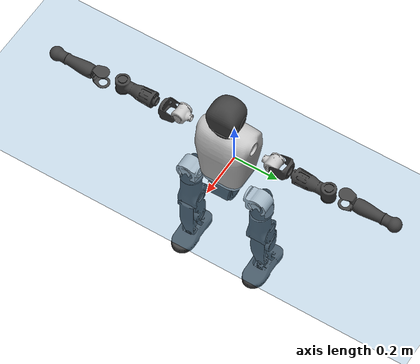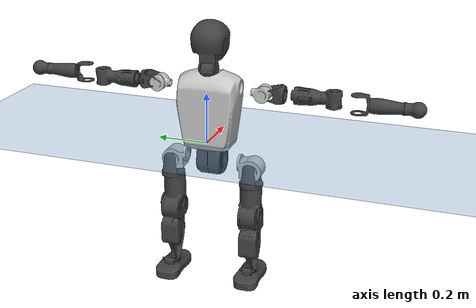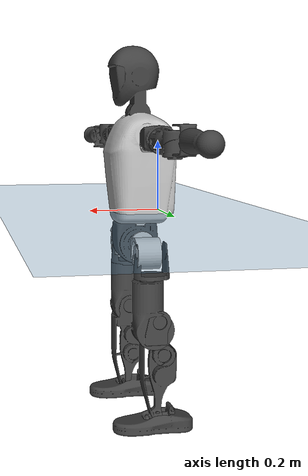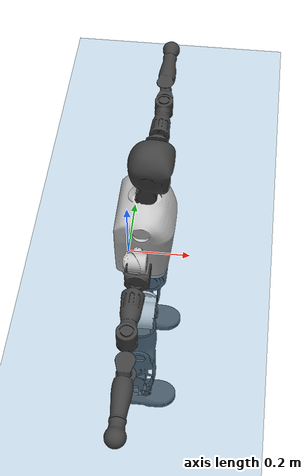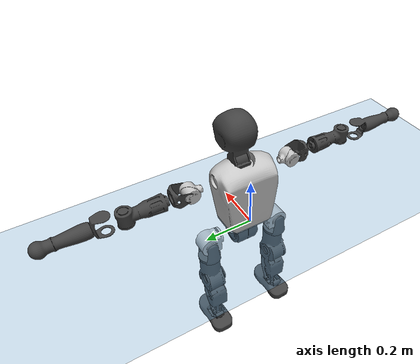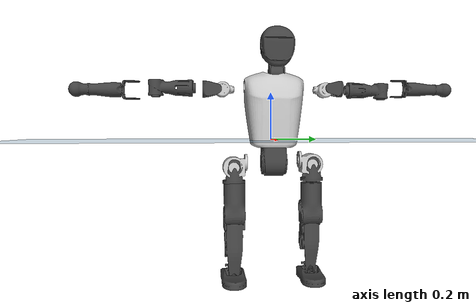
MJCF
<mujoco model="T1">
  <compiler angle="radian" assetdir="assets" balanceinertia="true" inertiafromgeom="false"/>

  <option timestep="0.005" density="1.2" viscosity="2e-05"/>

  <size nkey="1"/>

  <visual>
    <quality shadowsize="8192"/>
    <map shadowclip="0.5"/>
  </visual>

  <default>
    <default class="/">
      <joint armature="0.01" damping="0.01" frictionloss="0.1"/>
      <geom contype="0" conaffinity="0" group="1" solref="-1000 -80"/>
      <site size="0.01 0.005 0.005" group="5"/>
      <general forcelimited="true" biastype="affine" gainprm="25" biasprm="0 -25 -0.6"/>
      <default class="t1">
        <geom rgba="0.25 0.25 0.25 1"/>
        <default class="visual">
          <geom type="mesh" group="2"/>
        </default>
        <default class="collision">
          <geom group="3"/>
        </default>
        <default class="foot">
          <geom size="0.1115 0.05 0.015" type="box" condim="6" group="4" priority="1" solimp="0.015 1 0.015"/>
        </default>
        <default class="reward_collision_sphere">
          <geom group="5" rgba="1 0 0 1"/>
        </default>
      </default>
    </default>
  </default>

  <asset>
    <texture type="skybox" colorspace="auto" name="//unnamed_texture_0" builtin="gradient" rgb1="0.95 0.95 0.95" rgb2="0.95 0.95 0.95" width="100" height="600"/>
    <texture type="2d" colorspace="auto" name="texplane" builtin="checker" rgb1="0.345 0.575 0.748" rgb2="0.345 0.575 0.748" markrgb="1 1 1" width="512" height="512"/>
    <material name="MatPlane" class="/" texture="texplane" texuniform="true" texrepeat="2 2" specular="0.9"/>
    <mesh name="Trunk" class="/" file="Trunk.stl"/>
    <mesh name="H1" class="/" file="H1.stl"/>
    <mesh name="H2" class="/" file="H2.stl"/>
    <mesh name="AL1" class="/" file="AL1.stl"/>
    <mesh name="AL2" class="/" file="AL2.stl"/>
    <mesh name="AL3" class="/" file="AL3.stl"/>
    <mesh name="left_hand_link" class="/" file="left_hand_link.stl"/>
    <mesh name="AR1" class="/" file="AR1.stl"/>
    <mesh name="AR2" class="/" file="AR2.stl"/>
    <mesh name="AR3" class="/" file="AR3.stl"/>
    <mesh name="right_hand_link" class="/" file="right_hand_link.stl"/>
    <mesh name="Waist" class="/" file="Waist.stl"/>
    <mesh name="Hip_Pitch_Left" class="/" file="Hip_Pitch_Left.stl"/>
    <mesh name="Hip_Roll_Left" class="/" file="Hip_Roll_Left.stl"/>
    <mesh name="Hip_Yaw_Left" class="/" file="Hip_Yaw_Left.stl"/>
    <mesh name="Shank_Left" class="/" file="Shank_Left.stl"/>
    <mesh name="Ankle_Cross_Left" class="/" file="Ankle_Cross_Left.stl"/>
    <mesh name="left_foot_link" class="/" file="left_foot_link.stl"/>
    <mesh name="Hip_Pitch_Right" class="/" file="Hip_Pitch_Right.stl"/>
    <mesh name="Hip_Roll_Right" class="/" file="Hip_Roll_Right.stl"/>
    <mesh name="Hip_Yaw_Right" class="/" file="Hip_Yaw_Right.stl"/>
    <mesh name="Shank_Right" class="/" file="Shank_Right.stl"/>
    <mesh name="Ankle_Cross_Right" class="/" file="Ankle_Cross_Right.stl"/>
    <mesh name="right_foot_link" class="/" file="right_foot_link.stl"/>
  </asset>

  <worldbody>
    <geom name="floor" class="/" size="100 100 0.125" type="plane" group="0" material="MatPlane"/>
    <light name="toplight_shadow" class="/" pos="0 0 5" dir="0.0990148 0.0990148 -0.990148" type="directional" ambient="0.04 0.04 0.04" diffuse="0.55 0.55 0.55" specular="0.12 0.12 0.12"/>
    <light name="toplight_fill" class="/" pos="0 0 5" dir="0.0990148 0.0990148 -0.990148" type="directional" castshadow="false" ambient="0.04 0.04 0.04" diffuse="0.3 0.3 0.3" specular="0.08 0.08 0.08"/>
    <body name="trunk" childclass="t1" pos="-0.000155689 0.0031489 0.00268772" quat="1 -0.000485433 0.000574927 0.000264278">
      <inertial pos="0.0478211 -0.0122396 0.0860637" quat="0.999578 0.0271545 0.0102953 -3.03979e-05" mass="19.3081" diaginertia="0.0905927 0.74878 0.0382061"/>
      <joint name="//unnamed_joint_0" type="free" armature="0" damping="0" frictionloss="0"/>
      <geom name="//unnamed_geom_1" class="visual" rgba="0.76 0.76 0.76 1" mesh="Trunk"/>
      <geom name="//unnamed_geom_2" class="collision" size="0.0866025 0.11547 0.173205" pos="0.0592156 0 0.109654" type="box"/>
      <geom name="//unnamed_geom_3" class="reward_collision_sphere" size="0.13279" pos="0.0592156 0 0.0913782"/>
      <geom name="//unnamed_geom_4" class="reward_collision_sphere" size="0.0173205" pos="0.0592156 0.132888 0"/>
      <geom name="//unnamed_geom_5" class="reward_collision_sphere" size="0.0173205" pos="0.0592156 -0.132888 0"/>
      <geom name="//unnamed_geom_6" class="reward_collision_sphere" size="0.0173205" pos="0.0592156 0.167283 0.164481"/>
      <geom name="//unnamed_geom_7" class="reward_collision_sphere" size="0.0173205" pos="0.0592156 -0.167283 0.164481"/>
      <site name="imu" pos="0.0278787 0.0225199 -0.00843197" size="0.011547"/>
      <camera name="track" pos="0 -3.12678 0" quat="0.707107 0.707107 0 0" mode="trackcom"/>
      <camera name="ego_camera" pos="0.120405 0 0.383788" quat="-0.5 -0.5 0.5 0.5"/>
      <body name="H1" pos="0.0642663 0.00918141 0.212079" quat="1 0.000118936 7.52917e-05 -9.59136e-05">
        <inertial pos="-0.00210746 -0.0145092 0.053086" quat="0.776147 -0.0536349 0.017902 0.628011" mass="0.73899" diaginertia="0.000237536 0.00226678 9.25172e-05"/>
        <joint name="AAHead_yaw" pos="0 0 0" axis="0.0168324 0.00592397 0.999841" range="-1.57224 1.77643" armature="0.0103143" damping="0" frictionloss="0.189077"/>
        <geom name="//unnamed_geom_8" class="visual" mesh="H1"/>
        <body name="H2" pos="-0.00181913 0.00287602 0.065421" quat="1 -0.000484417 -2.30539e-05 0.000497516">
          <inertial pos="0.00980225 0.0124451 0.0931267" quat="0.979509 0.153078 -0.0967613 -0.0881289" mass="0.997063" diaginertia="0.00190653 0.0183625 0.00101005"/>
          <joint name="Head_pitch" pos="0 0 0" axis="-0.00614653 -0.999977 -0.00295014" range="-1.25004 0.3316" armature="0.0107889" damping="0" frictionloss="0.153275"/>
          <geom name="//unnamed_geom_9" class="visual" mesh="H2"/>
          <geom name="//unnamed_geom_10" class="collision" size="0.0923759" pos="0.00986927 0 0.100516"/>
          <geom name="//unnamed_geom_11" class="reward_collision_sphere" size="0.103923" pos="0.0197385 0 0.0913782"/>
        </body>
      </body>
      <body name="AL1" pos="0.0638595 0.170135 0.205375" quat="0.999986 -0.0032779 0.00382749 -0.00188273">
        <inertial pos="-0.000785748 0.0745497 0.00348899" quat="0.499179 0.503136 -0.538884 0.455278" mass="0.81341" diaginertia="0.00125114 0.0106532 0.000191776"/>
        <joint name="Left_Shoulder_Pitch" pos="0 0 0" axis="-0.0023622 0.999991 0.00339753" stiffness="0.00104366" range="-3.32439 1.0379" armature="0.0118524" damping="0.0158924" frictionloss="0.11538"/>
        <geom name="//unnamed_geom_12" class="visual" rgba="0.76 0.76 0.76 1" mesh="AL1"/>
        <body name="AL2" pos="-3.49246e-05 0.0646564 0.00696681" quat="0.999994 -0.00351943 -4.66876e-05 0.000345283">
          <inertial pos="-0.00667766 0.047332 -0.00540165" quat="0.453686 0.559212 -0.489736 0.491539" mass="0.236216" diaginertia="0.000387924 0.00326987 9.93082e-05"/>
          <joint name="Left_Shoulder_Roll" pos="0 0 0" axis="-1 0.000114852 -0.000193683" range="-1.58494 1.72929" armature="0.0112368" damping="0" frictionloss="0.121106"/>
          <geom name="//unnamed_geom_13" class="visual" mesh="AL2"/>
          <body name="AL3" pos="0.00174158 0.0820893 -0.00486392" quat="1 -0.000246491 -8.76014e-05 -0.000365048">
            <inertial pos="0.0110373 0.134696 0.00577523" quat="0.720899 0.692555 -0.0160705 -0.0203743" mass="1.26127" diaginertia="0.0109771 0.105437 0.000343002"/>
            <joint name="Left_Elbow_Pitch" pos="0 0 0" axis="-0.0225897 -0.99974 -0.00299323" range="-2.2824 2.05494" armature="0.0112017" damping="0" frictionloss="0.106202"/>
            <geom name="//unnamed_geom_14" class="visual" mesh="AL3"/>
            <geom name="//unnamed_geom_15" class="collision" size="0.034641 0.0866025" pos="0 0.0781694 0" quat="0.707105 0.707108 0 0" type="cylinder"/>
            <geom name="//unnamed_geom_16" class="reward_collision_sphere" size="0.0415692"/>
            <body name="left_hand_link" pos="-0.00425351 0.219352 0.0115939" quat="1 -3.39115e-05 -9.41693e-05 9.24778e-05">
              <inertial pos="0.000448335 0.170862 0.00171743" quat="0.704132 0.710014 0.00706619 0.00529665" mass="0.499029" diaginertia="0.0084286 0.0740618 0.000135994"/>
              <joint name="Left_Elbow_Yaw" pos="0 0 0" axis="0.00762197 -0.0127572 0.99989" range="-2.22853 -0.0138074" armature="0.0103931" damping="0.0696289" frictionloss="0.0672784"/>
              <geom name="//unnamed_geom_17" class="visual" mesh="left_hand_link"/>
              <geom name="//unnamed_geom_18" class="collision" size="0.034641 0.101036" pos="0 0.203241 0" quat="0.707105 0.707108 0 0" type="cylinder"/>
              <geom name="//unnamed_geom_19" class="reward_collision_sphere" size="0.057735"/>
              <geom name="//unnamed_geom_20" class="reward_collision_sphere" size="0.0404145" pos="0 0.171973 0"/>
              <geom name="//unnamed_geom_21" class="reward_collision_sphere" size="0.0404145" pos="0 0.336129 0"/>
            </body>
          </body>
        </body>
      </body>
      <body name="AR1" pos="0.053517 -0.165643 0.20494" quat="0.999994 -0.00096244 0.00149426 -0.00281822">
        <inertial pos="0.00531577 -0.0706154 0.0108902" quat="0.540592 0.499602 -0.465165 0.491711" mass="0.689305" diaginertia="0.00122688 0.0108854 0.000162356"/>
        <joint name="Right_Shoulder_Pitch" pos="0 0 0" axis="0.0246955 -0.999694 -0.00140634" range="-1.24596 3.27303" armature="0.0112436" damping="0.0560261" frictionloss="0.181179"/>
        <geom name="//unnamed_geom_22" class="visual" rgba="0.76 0.76 0.76 1" mesh="AR1"/>
        <body name="AR2" pos="0.0108231 -0.0723193 -0.000517549" quat="1 0.000525503 -0.000515694 0.000128706">
          <inertial pos="0.00945988 -0.0470865 -5.85885e-05" quat="0.544222 0.449996 -0.525976 0.474" mass="0.23977" diaginertia="0.000335387 0.00310967 9.97655e-05"/>
          <joint name="Right_Shoulder_Roll" pos="0 0 0" axis="-0.999426 -0.0101384 -0.0323099" range="-1.75481 1.54396" armature="0.0117822" damping="0.0693668" frictionloss="0.105549"/>
          <geom name="//unnamed_geom_23" class="visual" mesh="AR2"/>
          <body name="AR3" pos="-0.00301111 -0.0963098 0.0035815" quat="0.999995 -0.000794525 -0.000968802 0.00279285">
            <inertial pos="-0.00218876 -0.13375 0.00151838" quat="0.727263 0.686168 -0.0158504 -0.00334479" mass="1.46109" diaginertia="0.0111101 0.127246 0.000380088"/>
            <joint name="Right_Elbow_Pitch" pos="0 0 0" axis="0.00894929 0.999888 0.0119582" range="-2.27267 2.21826" armature="0.0112333" damping="0" frictionloss="0.111173"/>
            <geom name="//unnamed_geom_24" class="visual" mesh="AR3"/>
            <geom name="//unnamed_geom_25" class="collision" size="0.034641 0.0866025" pos="0 -0.0781694 0" quat="0.707105 0.707108 0 0" type="cylinder"/>
            <geom name="//unnamed_geom_26" class="reward_collision_sphere" size="0.0415692"/>
            <body name="right_hand_link" pos="0.00793263 -0.236466 -0.0118902" quat="0.999994 -0.00225043 -0.00240753 0.000405618">
              <inertial pos="0.00238168 -0.178378 -0.00275645" quat="0.707599 0.706597 -0.0022594 0.00444088" mass="0.481763" diaginertia="0.00703803 0.0698209 0.000134833"/>
              <joint name="Right_Elbow_Yaw" pos="0 0 0" axis="0.00539592 0.00503036 0.999973" stiffness="0.00293186" range="-0.132393 2.39954" armature="0.0110087" damping="0.0136908" frictionloss="0.0521715"/>
              <geom name="//unnamed_geom_27" class="visual" mesh="right_hand_link"/>
              <geom name="//unnamed_geom_28" class="collision" size="0.034641 0.101036" pos="0 -0.203241 0" quat="0.707105 0.707108 0 0" type="cylinder"/>
              <geom name="//unnamed_geom_29" class="reward_collision_sphere" size="0.057735"/>
              <geom name="//unnamed_geom_30" class="reward_collision_sphere" size="0.0404145" pos="0 -0.171973 0"/>
              <geom name="//unnamed_geom_31" class="reward_collision_sphere" size="0.0404145" pos="0 -0.336129 0"/>
            </body>
          </body>
        </body>
      </body>
      <body name="Waist" pos="0.0698713 -0.00071037 -0.0947222" quat="0.999999 0.000282387 0.00054132 0.00125317">
        <inertial pos="0.0153464 -0.00113827 0.00658183" quat="0.984053 0.000143369 -0.17784 0.00363408" mass="4.67343" diaginertia="0.00619714 0.0521466 0.00311693"/>
        <joint name="Waist" pos="0 0 0" axis="-0.00406006 -0.0122191 0.999917" range="-1.46088 1.60353" armature="0.00776714" damping="0" frictionloss="0.116741"/>
        <geom name="//unnamed_geom_32" class="visual" mesh="Waist"/>
        <body name="Hip_Pitch_Left" pos="0.000306725 0.160148 0.00913305" quat="1 -5.6189e-05 7.88121e-05 -8.36366e-05">
          <inertial pos="0.0024259 -0.019877 -0.0236664" quat="0.973461 0.226159 0.0264367 -0.0229397" mass="1.38158" diaginertia="0.0017395 0.0127061 0.000827385"/>
          <joint name="Left_Hip_Pitch" pos="0 0 0" axis="0.00184457 0.999985 -0.00519511" range="-1.81309 1.35552" armature="0.00474755" damping="0" frictionloss="0.0981197"/>
          <geom name="//unnamed_geom_33" class="visual" rgba="0.76 0.76 0.76 1" mesh="Hip_Pitch_Left"/>
          <body name="Hip_Roll_Left" pos="-0.0106199 0.0044432 -0.0132174" quat="0.999999 0.000700091 -0.000702842 0.000806166">
            <inertial pos="0.00604441 -0.00114869 -0.0535699" quat="0.687666 -0.0415907 -0.0435293 0.723527" mass="0.651299" diaginertia="0.0017421 0.0127741 0.000319861"/>
            <joint name="Left_Hip_Roll" pos="0 0 0" axis="-0.998933 -0.04601 -0.00392464" range="-1.57875 0.176949" armature="0.00545175" damping="0.0123392" frictionloss="0.147479"/>
            <geom name="//unnamed_geom_34" class="visual" mesh="Hip_Roll_Left"/>
            <geom name="//unnamed_geom_35" class="reward_collision_sphere" size="0.0635085"/>
            <body name="Hip_Yaw_Left" pos="0.00683948 -0.00286177 -0.0852853" quat="1 -2.36004e-05 5.99164e-06 -1.48919e-05">
              <inertial pos="0.00222232 -0.00233325 -0.0807285" quat="0.697663 -0.0341796 -0.0326847 0.714863" mass="3.34609" diaginertia="0.0232908 0.262896 0.00159485"/>
              <joint name="Left_Hip_Yaw" pos="0 0 0" axis="0.00284062 0.00101122 -0.999995" range="-0.893375 0.804626" armature="0.0124983" damping="0.0222321" frictionloss="0.107461"/>
              <geom name="//unnamed_geom_36" class="visual" mesh="Hip_Yaw_Left"/>
              <geom name="//unnamed_geom_37" class="collision" size="0.057735 0.0923759" type="cylinder"/>
              <body name="Shank_Left" pos="-0.0257151 -0.00135126 -0.109436" quat="1 -1.94958e-06 0.000140806 -6.23305e-05">
                <inertial pos="-0.00464891 -0.00889044 -0.123639" quat="0.997548 0.00314979 -0.0225929 0.0661665" mass="3.02274" diaginertia="0.0322502 0.314955 0.001138"/>
                <joint name="Left_Knee_Pitch" pos="0 0 0" axis="-0.00414678 0.999973 0.00599292" range="-0.0948731 2.42425" armature="0.0111256" damping="0" frictionloss="0.122767"/>
                <geom name="//unnamed_geom_38" class="visual" mesh="Shank_Left"/>
                <geom name="//unnamed_geom_39" class="collision" size="0.057735 0.0866025" pos="0 0 -0.109654" type="cylinder"/>
                <geom name="//unnamed_geom_40" class="reward_collision_sphere" size="0.0750555"/>
                <body name="Ankle_Cross_Left" pos="0.000499302 -0.00233417 -0.265937" quat="1 -6.89622e-05 -0.000256047 -0.000208531">
                  <inertial pos="0.000519477 -0.00767204 -0.0126244" quat="0.467388 0.565747 0.527613 0.427907" mass="0.100025" diaginertia="2.39026e-05 0.000257386 7.16723e-06"/>
                  <joint name="Left_Ankle_Pitch" pos="0 0 0" axis="0.000557415 0.999999 -0.000906815" range="-1.08512 0.333273" armature="0.0141839" damping="0.0114412" frictionloss="0.102151"/>
                  <geom name="//unnamed_geom_41" class="visual" mesh="Ankle_Cross_Left"/>
                  <body name="left_foot_link" pos="0.00241947 0.00696762 -0.0193689" quat="0.999997 0.00160185 0.000163504 -0.00160778">
                    <inertial pos="0.00775364 -0.000179317 0.000549709" quat="-0.000921829 0.628622 0.00585783 0.777688" mass="1.19692" diaginertia="0.00318762 0.0231765 0.00131501"/>
                    <joint name="Left_Ankle_Roll" pos="0 0 0" axis="-0.999989 0.00388491 -0.00248728" stiffness="0.0014369" range="-0.47877 0.435017" armature="0.011857" damping="0.0123827" frictionloss="0.112491"/>
                    <geom name="//unnamed_geom_42" class="visual" mesh="left_foot_link"/>
                    <geom name="left_foot" class="foot" size="0.102822 0.0340951 0.0197857" pos="0.00986927 0 -0.0137067"/>
                    <geom name="//unnamed_geom_44" class="reward_collision_sphere" size="0.0600444" pos="0.00986927 0 -0.0137067"/>
                    <geom name="//unnamed_geom_45" class="reward_collision_sphere" size="0.034641" pos="0.0937581 -0.0359579 -0.0137067"/>
                    <geom name="//unnamed_geom_46" class="reward_collision_sphere" size="0.034641" pos="-0.0690849 -0.0359579 -0.0137067"/>
                    <site name="left_foot" class="foot" pos="0.00986927 0 -0.0137067" size="0.011547"/>
                  </body>
                </body>
              </body>
            </body>
          </body>
        </body>
        <body name="Hip_Pitch_Right" pos="0.000657214 -0.167873 -0.00192855" quat="0.999987 -0.000804334 -0.00500515 0.00100943">
          <inertial pos="0.00913032 0.014236 -0.0261558" quat="0.974303 -0.224957 0.00629072 -0.00938441" mass="1.42983" diaginertia="0.00154365 0.0127342 0.000839843"/>
          <joint name="Right_Hip_Pitch" pos="0 0 0" axis="0.00224622 -0.999997 0.000900286" range="-1.57186 2.03864" armature="0.0154821" damping="0" frictionloss="0.121572"/>
          <geom name="//unnamed_geom_47" class="visual" rgba="0.76 0.76 0.76 1" mesh="Hip_Pitch_Right"/>
          <body name="Hip_Roll_Right" pos="-0.0110412 0.00245587 -0.0100417" quat="0.999997 -0.000471766 -0.000215982 0.00239137">
            <inertial pos="0.00257271 -0.00298364 -0.0554771" quat="0.715858 -0.039009 -0.0510253 0.695286" mass="0.623658" diaginertia="0.00163695 0.0126583 0.000327518"/>
            <joint name="Right_Hip_Roll" pos="0 0 0" axis="-0.99986 0.0130339 0.0104523" range="-0.450204 1.59067" armature="0.0117755" damping="0" frictionloss="0.0858773"/>
            <geom name="//unnamed_geom_48" class="visual" mesh="Hip_Roll_Right"/>
            <geom name="//unnamed_geom_49" class="reward_collision_sphere" size="0.0635085"/>
            <body name="Hip_Yaw_Right" pos="0.00460756 0.00163283 -0.0741652" quat="1 -1.58894e-07 5.79479e-08 5.10015e-08">
              <inertial pos="-0.00470364 0.00511674 -0.0706581" quat="0.713173 -0.0436844 -0.0277729 0.699074" mass="3.22174" diaginertia="0.0239362 0.214219 0.00173214"/>
              <joint name="Right_Hip_Yaw" pos="0 0 0" axis="-0.0394402 0.0510328 -0.997918" range="-1.01661 0.962097" armature="0.00612733" damping="0.0625866" frictionloss="0.112562"/>
              <geom name="//unnamed_geom_50" class="visual" mesh="Hip_Yaw_Right"/>
              <geom name="//unnamed_geom_51" class="collision" size="0.057735 0.0923759" type="cylinder"/>
              <body name="Shank_Right" pos="-0.00840635 -0.00133555 -0.131173" quat="0.999996 -0.00134408 -3.39104e-05 0.00255628">
                <inertial pos="-0.0077678 0.00149579 -0.103764" quat="0.99933 -3.03044e-05 -0.0206772 -0.0302148" mass="2.34749" diaginertia="0.0284747 0.294793 0.0010394"/>
                <joint name="Right_Knee_Pitch" pos="0 0 0" axis="0.0347281 -0.999073 -0.0254444" range="-2.55186 -0.0716363" armature="0.00476209" damping="0" frictionloss="0.114264"/>
                <geom name="//unnamed_geom_52" class="visual" mesh="Shank_Right"/>
                <geom name="//unnamed_geom_53" class="collision" size="0.057735 0.0866025" pos="0 0 -0.109654" type="cylinder"/>
                <geom name="//unnamed_geom_54" class="reward_collision_sphere" size="0.0750555"/>
                <body name="Ankle_Cross_Right" pos="0.00586803 -0.00218142 -0.25525" quat="1 0.000188887 0.000565341 0.000104842">
                  <inertial pos="-0.00524395 0.00646144 -0.00769033" quat="0.456025 0.541986 0.549949 0.442547" mass="0.101196" diaginertia="2.55492e-05 0.000224382 6.43474e-06"/>
                  <joint name="Right_Ankle_Pitch" pos="0 0 0" axis="-0.0213454 -0.999697 0.0122761" stiffness="0.0451406" range="-0.16175 1.06277" armature="0.0115715" damping="0.00371111" frictionloss="0.121878"/>
                  <geom name="//unnamed_geom_55" class="visual" mesh="Ankle_Cross_Right"/>
                  <body name="right_foot_link" pos="-0.0103936 -2.46766e-05 -0.00569739" quat="1 7.34492e-05 -8.61426e-05 0.000434139">
                    <inertial pos="0.0116752 0.00163211 -0.00757969" quat="-0.000660703 0.616216 0.00203209 0.787575" mass="1.08456" diaginertia="0.00253657 0.0249665 0.00143654"/>
                    <joint name="Right_Ankle_Roll" pos="0 0 0" axis="-0.999431 0.0333999 0.00461891" range="-0.216156 0.429513" armature="0.0119813" damping="0.0541463" frictionloss="0.115186"/>
                    <geom name="//unnamed_geom_56" class="visual" mesh="right_foot_link"/>
                    <geom name="right_foot" class="foot" size="0.0884128 0.0629153 0.0190996" pos="0.00986927 0 -0.0137067"/>
                    <geom name="//unnamed_geom_58" class="reward_collision_sphere" size="0.046188"/>
                    <geom name="//unnamed_geom_59" class="reward_collision_sphere" size="0.034641" pos="0.00986927 0 -0.0137067"/>
                    <geom name="//unnamed_geom_60" class="reward_collision_sphere" size="0.034641" pos="0.0937581 0.0359579 -0.0137067"/>
                    <geom name="//unnamed_geom_61" class="reward_collision_sphere" size="0.034641" pos="-0.0690849 0.0359579 -0.0137067"/>
                    <site name="right_foot" class="foot" pos="0.00986927 0 -0.0137067" size="0.011547"/>
                  </body>
                </body>
              </body>
            </body>
          </body>
        </body>
      </body>
    </body>
  </worldbody>

  <contact>
    <pair class="/" geom1="floor" geom2="left_foot" name="//unnamed_contact_0"/>
    <pair class="/" geom1="floor" geom2="right_foot" name="//unnamed_contact_1"/>
  </contact>

  <actuator>
    <general name="AAHead_yaw" class="/" joint="AAHead_yaw" forcerange="-7.51224 7.51224" gainprm="34.4407" biasprm="0 -34.4407 -0.694177"/>
    <general name="Head_pitch" class="/" joint="Head_pitch" forcerange="-8.01923 8.01923" gainprm="34.4407" biasprm="0 -34.4407 -0.694177"/>
    <general name="Left_Shoulder_Pitch" class="/" joint="Left_Shoulder_Pitch" forcerange="-25.1667 25.1667" gainprm="34.4407" biasprm="0 -34.4407 -0.694177"/>
    <general name="Left_Shoulder_Roll" class="/" joint="Left_Shoulder_Roll" forcerange="-22.5936 22.5936" gainprm="34.4407" biasprm="0 -34.4407 -0.694177"/>
    <general name="Left_Elbow_Pitch" class="/" joint="Left_Elbow_Pitch" forcerange="-21.5507 21.5507" gainprm="34.4407" biasprm="0 -34.4407 -0.694177"/>
    <general name="Left_Elbow_Yaw" class="/" joint="Left_Elbow_Yaw" forcerange="-22.8307 22.8307" gainprm="34.4407" biasprm="0 -34.4407 -0.694177"/>
    <general name="Right_Shoulder_Pitch" class="/" joint="Right_Shoulder_Pitch" forcerange="-18.9866 18.9866" gainprm="34.4407" biasprm="0 -34.4407 -0.694177"/>
    <general name="Right_Shoulder_Roll" class="/" joint="Right_Shoulder_Roll" forcerange="-24.9011 24.9011" gainprm="34.4407" biasprm="0 -34.4407 -0.694177"/>
    <general name="Right_Elbow_Pitch" class="/" joint="Right_Elbow_Pitch" forcerange="-12.4298 12.4298" gainprm="34.4407" biasprm="0 -34.4407 -0.694177"/>
    <general name="Right_Elbow_Yaw" class="/" joint="Right_Elbow_Yaw" forcerange="-18.4928 18.4928" gainprm="34.4407" biasprm="0 -34.4407 -0.694177"/>
    <general name="Waist" class="/" joint="Waist" forcerange="-30.8338 30.8338" gainprm="34.4407" biasprm="0 -34.4407 -0.694177"/>
    <general name="Left_Hip_Pitch" class="/" joint="Left_Hip_Pitch" forcerange="-55.0992 55.0992" gainprm="34.4407" biasprm="0 -34.4407 -0.694177"/>
    <general name="Left_Hip_Roll" class="/" joint="Left_Hip_Roll" forcerange="-24.1583 24.1583" gainprm="34.4407" biasprm="0 -34.4407 -0.694177"/>
    <general name="Left_Hip_Yaw" class="/" joint="Left_Hip_Yaw" forcerange="-46.043 46.043" gainprm="34.4407" biasprm="0 -34.4407 -0.694177"/>
    <general name="Left_Knee_Pitch" class="/" joint="Left_Knee_Pitch" forcerange="-68.9226 68.9226" gainprm="34.4407" biasprm="0 -34.4407 -0.694177"/>
    <general name="Left_Ankle_Pitch" class="/" joint="Left_Ankle_Pitch" forcerange="-21.7062 21.7062" gainprm="34.4407" biasprm="0 -34.4407 -0.694177"/>
    <general name="Left_Ankle_Roll" class="/" joint="Left_Ankle_Roll" forcerange="-11.0415 11.0415" gainprm="34.4407" biasprm="0 -34.4407 -0.694177"/>
    <general name="Right_Hip_Pitch" class="/" joint="Right_Hip_Pitch" forcerange="-52.2292 52.2292" gainprm="34.4407" biasprm="0 -34.4407 -0.694177"/>
    <general name="Right_Hip_Roll" class="/" joint="Right_Hip_Roll" forcerange="-36.756 36.756" gainprm="34.4407" biasprm="0 -34.4407 -0.694177"/>
    <general name="Right_Hip_Yaw" class="/" joint="Right_Hip_Yaw" forcerange="-20.0212 20.0212" gainprm="34.4407" biasprm="0 -34.4407 -0.694177"/>
    <general name="Right_Knee_Pitch" class="/" joint="Right_Knee_Pitch" forcerange="-69.4057 69.4057" gainprm="34.4407" biasprm="0 -34.4407 -0.694177"/>
    <general name="Right_Ankle_Pitch" class="/" joint="Right_Ankle_Pitch" forcerange="-23.7604 23.7604" gainprm="34.4407" biasprm="0 -34.4407 -0.694177"/>
    <general name="Right_Ankle_Roll" class="/" joint="Right_Ankle_Roll" forcerange="-21.1278 21.1278" gainprm="34.4407" biasprm="0 -34.4407 -0.694177"/>
  </actuator>

  <sensor>
    <gyro site="imu" name="imu_angular_velocity"/>
    <velocimeter site="imu" name="imu_linear_velocity"/>
    <framelinvel objtype="site" objname="left_foot" name="left_foot_global_linear_velocity"/>
    <framelinvel objtype="site" objname="right_foot" name="right_foot_global_linear_velocity"/>
  </sensor>

  <keyframe>
    <key name="home" qpos="0 0 0.6385 1 0 0 0 0 0 0 1.4 0 -0.4 0 -1.4 0 0.4 0 -0.4 0 0 0.8 -0.4 0 0.4 0 0 -0.8 0.4 0"/>
  </keyframe>
</mujoco>
